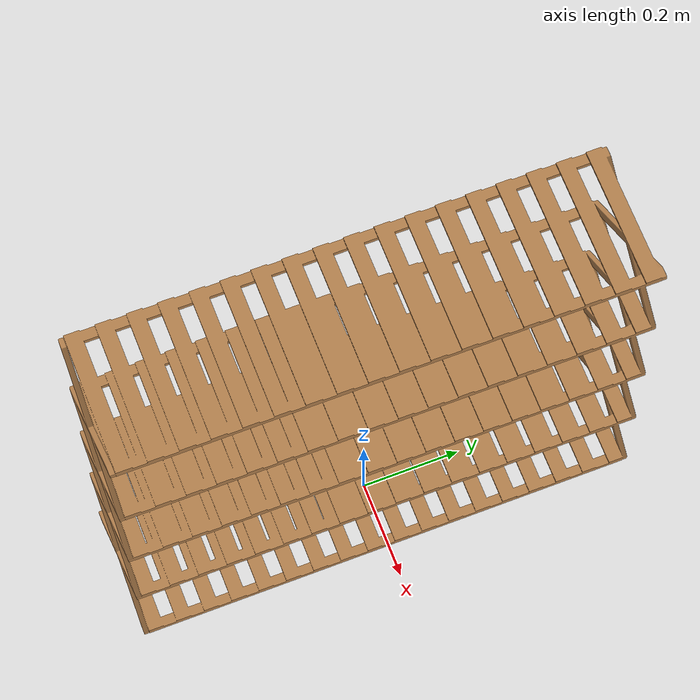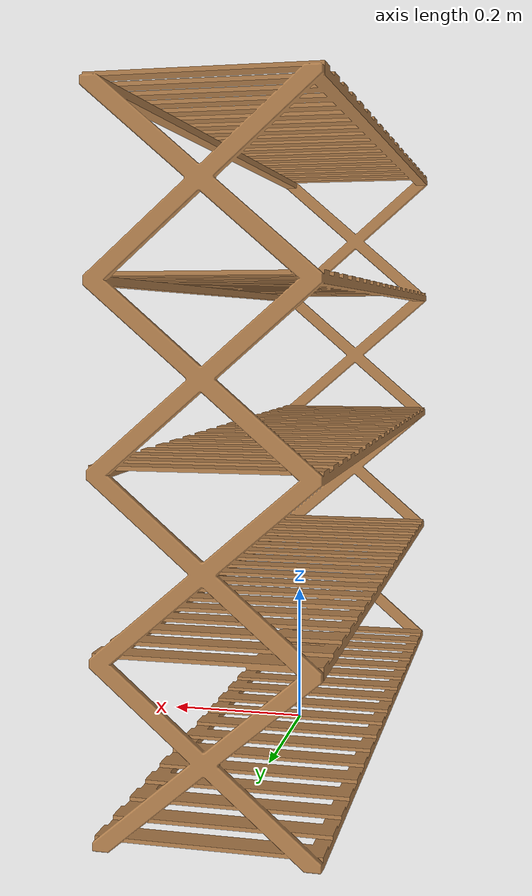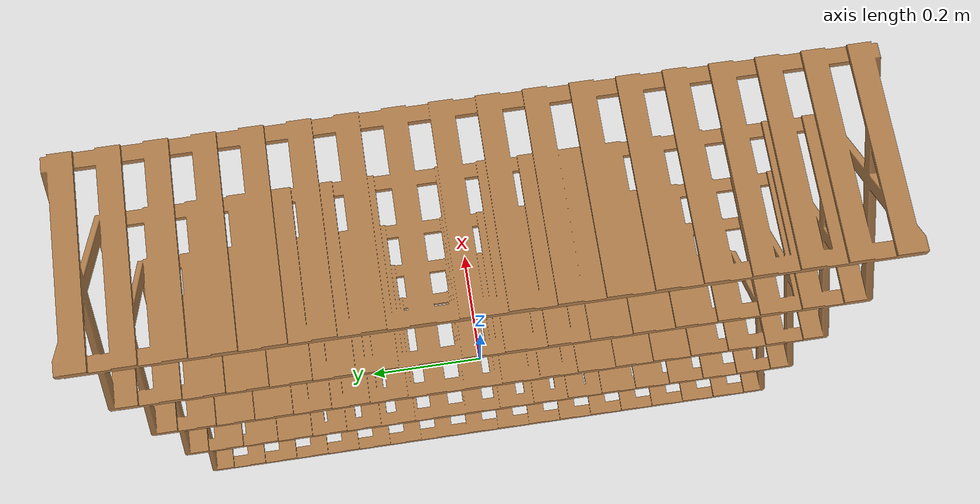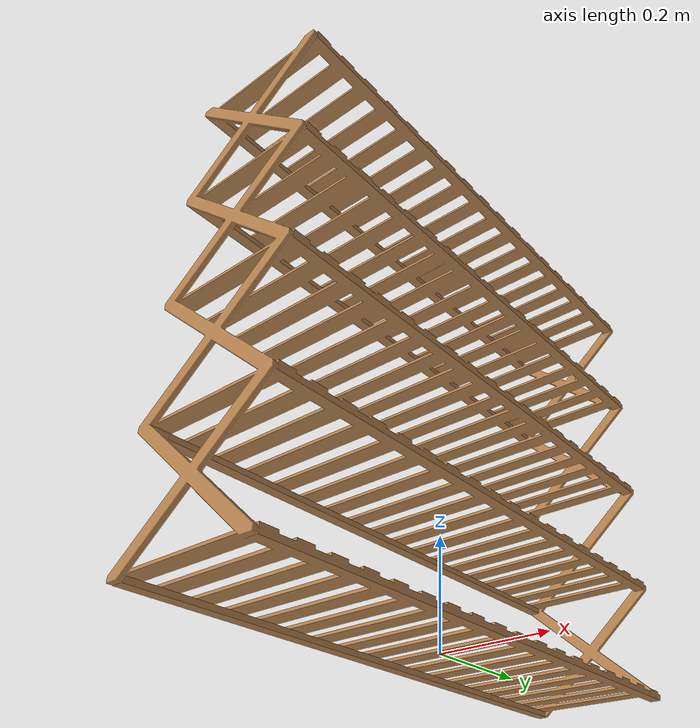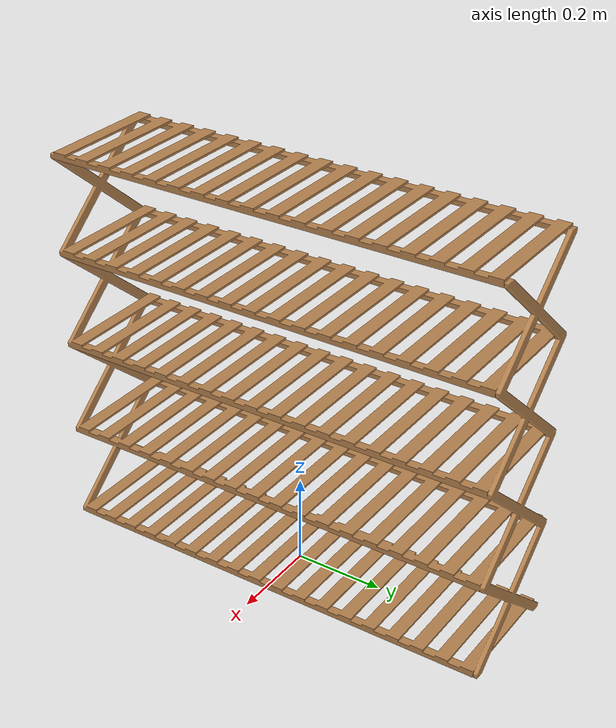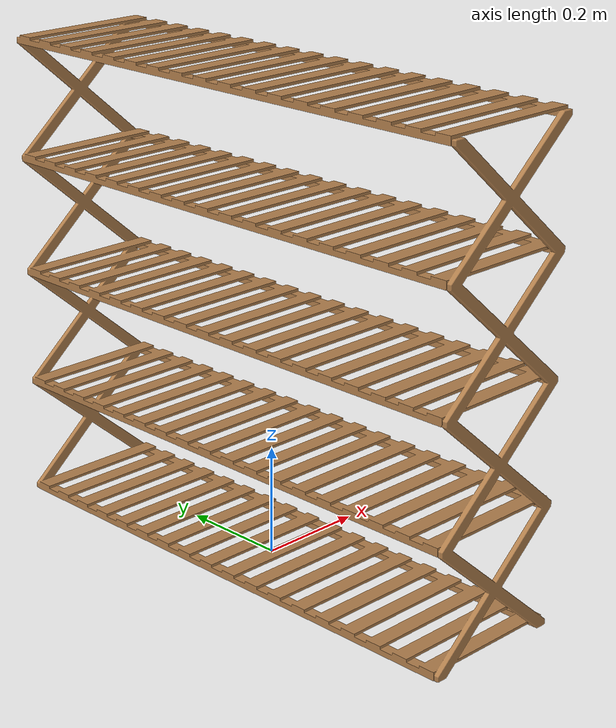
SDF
<?xml version="1.0" ?>

<sdf version="1.5">
  <model name="rgiro_akozlin_shelf">
    <static>1</static>
    <link name="link">
      <visual name="visual">
        <geometry>
          <mesh>
            <uri>model://rgiro_akozlin_shelf/meshes/rgiro_akozlin_shelf.dae</uri>
          </mesh>
        </geometry>
        <material>
          <script>
            <uri>file://media/materials/scripts/gazebo.material</uri>
            <name>Gazebo/Wood</name>
          </script>
        </material>
      </visual>
      <collision name="collision">
        <geometry>
          <mesh>
            <uri>model://rgiro_akozlin_shelf/meshes/rgiro_akozlin_shelf.dae</uri>
          </mesh>
        </geometry>
      </collision>
    </link>
  </model>
</sdf>
